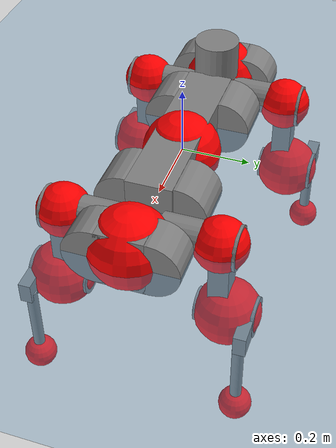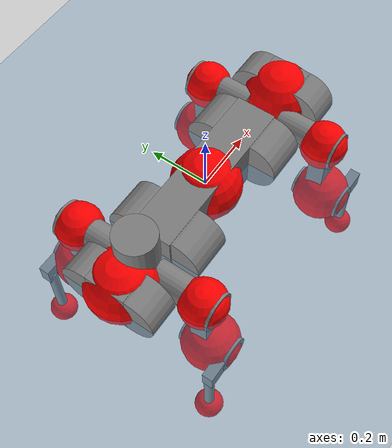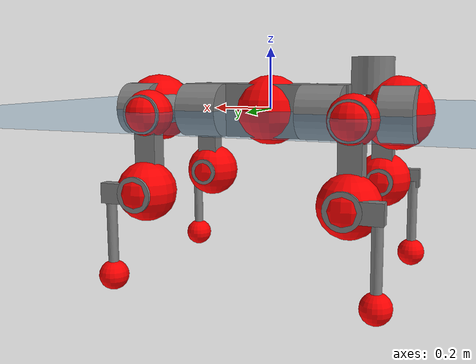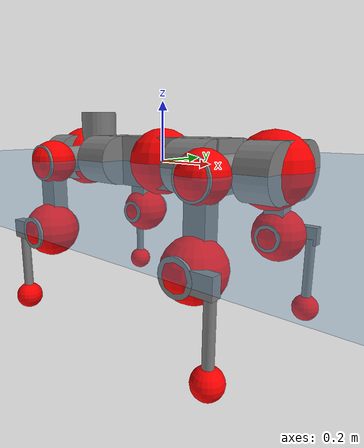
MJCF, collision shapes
<mujoco model="anymal_c">
  <compiler angle="radian" assetdir="assets" balanceinertia="true" inertiafromgeom="false"/>

  <option timestep="0.005" density="1.2" viscosity="2e-05"/>

  <size nkey="1"/>

  <visual>
    <quality shadowsize="8192"/>
    <map shadowclip="0.5"/>
  </visual>

  <default>
    <default class="/">
      <material specular="0" shininess="0.25"/>
      <geom contype="0" conaffinity="0" group="1" solref="-1000 -80"/>
      <site size="0.01 0.005 0.005" group="5"/>
      <general forcelimited="true" forcerange="-80 80" biastype="affine" gainprm="80" biasprm="0 -80 -2"/>
      <default class="anymal_c">
        <joint armature="0.01" damping="0.01" frictionloss="0.1"/>
        <default class="visual">
          <geom type="mesh" group="2"/>
          <default class="visual_zflip"/>
        </default>
        <default class="collision">
          <geom type="cylinder" group="3"/>
          <default class="foot">
            <geom size="0.03 0 0" type="sphere" condim="6" priority="1" friction="0.8 0.02 0.01" solimp="0.015 1 0.03"/>
          </default>
        </default>
      </default>
      <default class="reward_collision_sphere">
        <geom group="5" rgba="1 0 0 1"/>
      </default>
    </default>
  </default>

  <asset>
    <texture type="skybox" colorspace="auto" name="//unnamed_texture_0" builtin="gradient" rgb1="0.95 0.95 0.95" rgb2="0.95 0.95 0.95" width="100" height="600"/>
    <texture type="2d" colorspace="auto" name="texplane" builtin="checker" rgb1="0.345 0.575 0.748" rgb2="0.345 0.575 0.748" markrgb="1 1 1" width="512" height="512"/>
    <texture type="2d" colorspace="linear" name="base" file="base.png"/>
    <texture type="2d" colorspace="linear" name="top_shell" file="top_shell.png"/>
    <texture type="2d" colorspace="linear" name="bottom_shell" file="bottom_shell.png"/>
    <texture type="2d" colorspace="linear" name="remote" file="remote.png"/>
    <texture type="2d" colorspace="linear" name="hatch" file="hatch.png"/>
    <texture type="2d" colorspace="linear" name="handle" file="handle.png"/>
    <texture type="2d" colorspace="linear" name="face" file="face.png"/>
    <texture type="2d" colorspace="linear" name="battery" file="battery.png"/>
    <texture type="2d" colorspace="linear" name="lidar_cage" file="lidar_cage.png"/>
    <texture type="2d" colorspace="linear" name="depth_camera" file="depth_camera.png"/>
    <texture type="2d" colorspace="linear" name="wide_angle_camera" file="wide_angle_camera.png"/>
    <texture type="2d" colorspace="linear" name="lidar" file="lidar.png"/>
    <texture type="2d" colorspace="linear" name="drive" file="drive.png"/>
    <texture type="2d" colorspace="linear" name="hip_l" file="hip_l.png"/>
    <texture type="2d" colorspace="linear" name="shank_l" file="shank_l.png"/>
    <texture type="2d" colorspace="linear" name="foot" file="foot.png"/>
    <texture type="2d" colorspace="linear" name="thigh" file="thigh.png"/>
    <texture type="2d" colorspace="linear" name="shank_r" file="shank_r.png"/>
    <texture type="2d" colorspace="linear" name="hip_r" file="hip_r.png"/>
    <material name="MatPlane" class="/" texture="texplane" texuniform="true" texrepeat="2 2" specular="0.9" shininess="0.5"/>
    <material name="black_plastic" class="/" rgba="0.007 0.007 0.007 1"/>
    <material name="green" class="/" rgba="0.052 0.178 0.033 1"/>
    <material name="red" class="/" rgba="0.178 0.006 0.005 1"/>
    <material name="yellow" class="/" rgba="0.178 0.119 0.006 1"/>
    <material name="lwl" class="/" rgba="0.8 0.8 0.8 1"/>
    <material name="base" class="/" texture="base"/>
    <material name="top_shell" class="/" texture="top_shell"/>
    <material name="bottom_shell" class="/" texture="bottom_shell"/>
    <material name="hip_l" class="/" texture="hip_l"/>
    <material name="thigh" class="/" texture="thigh"/>
    <material name="shank_l" class="/" texture="shank_l"/>
    <material name="foot" class="/" texture="foot"/>
    <material name="hip_r" class="/" texture="hip_r"/>
    <material name="shank" class="/" texture="shank_r"/>
    <material name="hatch" class="/" texture="hatch"/>
    <material name="remote" class="/" texture="remote"/>
    <material name="handle" class="/" texture="handle"/>
    <material name="face" class="/" texture="face"/>
    <material name="depth_camera" class="/" texture="depth_camera"/>
    <material name="wide_angle_camera" class="/" texture="wide_angle_camera"/>
    <material name="battery" class="/" texture="battery"/>
    <material name="lidar_cage" class="/" texture="lidar_cage"/>
    <material name="lidar" class="/" texture="lidar"/>
    <material name="drive" class="/" texture="drive"/>
    <mesh name="base_0" class="/" file="base_0.obj"/>
    <mesh name="base_1" class="/" file="base_1.obj"/>
    <mesh name="base_2" class="/" file="base_2.obj"/>
    <mesh name="base_3" class="/" file="base_3.obj"/>
    <mesh name="base_4" class="/" file="base_4.obj"/>
    <mesh name="base_5" class="/" file="base_5.obj"/>
    <mesh name="top_shell" class="/" file="top_shell.obj"/>
    <mesh name="bottom_shell" class="/" file="bottom_shell.obj"/>
    <mesh name="remote" class="/" file="remote.obj"/>
    <mesh name="handle" class="/" file="handle.obj"/>
    <mesh name="face" class="/" file="face.obj"/>
    <mesh name="wide_angle_camera" class="/" file="wide_angle_camera.obj"/>
    <mesh name="depth_camera" class="/" file="depth_camera.obj"/>
    <mesh name="battery" class="/" file="battery.obj"/>
    <mesh name="lidar_cage" class="/" file="lidar_cage.obj"/>
    <mesh name="lidar" class="/" file="lidar.obj"/>
    <mesh name="drive" class="/" file="drive.obj"/>
    <mesh name="hip_l" class="/" file="hip_l.obj"/>
    <mesh name="thigh" class="/" file="thigh.obj"/>
    <mesh name="shank_l" class="/" file="shank_l.obj"/>
    <mesh name="foot" class="/" file="foot.obj"/>
    <mesh name="hip_r" class="/" file="hip_r.obj"/>
    <mesh name="hatch" class="/" file="hatch.obj"/>
    <mesh name="shank_r" class="/" file="shank_r.obj"/>
  </asset>

  <worldbody>
    <geom name="floor" class="/" size="100 100 0.125" type="plane" group="0" material="MatPlane"/>
    <light name="toplight_shadow" class="/" pos="0 0 5" dir="0.0990148 0.0990148 -0.990148" type="directional" ambient="0.04 0.04 0.04" diffuse="0.55 0.55 0.55" specular="0.12 0.12 0.12"/>
    <light name="toplight_fill" class="/" pos="0 0 5" dir="0.0990148 0.0990148 -0.990148" type="directional" castshadow="false" ambient="0.04 0.04 0.04" diffuse="0.3 0.3 0.3" specular="0.08 0.08 0.08"/>
    <body name="trunk" childclass="anymal_c" pos="0.000566486 -0.00204234 -0.00266791" quat="1 -0.000173434 0.000385332 0.000439979">
      <inertial pos="0.00347204 -8.98205e-06 0.0419053" quat="0.494475 0.493089 0.502789 0.509471" mass="17.6382" diaginertia="0.449817 0.943396 0.104975"/>
      <joint name="//unnamed_joint_0" type="free" armature="0" damping="0" frictionloss="0"/>
      <geom name="//unnamed_geom_1" class="visual" material="green" mesh="base_0"/>
      <geom name="//unnamed_geom_2" class="visual" material="yellow" mesh="base_1"/>
      <geom name="//unnamed_geom_3" class="visual" material="red" mesh="base_2"/>
      <geom name="//unnamed_geom_4" class="visual" material="black_plastic" mesh="base_3"/>
      <geom name="//unnamed_geom_5" class="visual" material="lwl" mesh="base_4"/>
      <geom name="//unnamed_geom_6" class="visual" material="base" mesh="base_5"/>
      <geom name="trunk_1" class="collision" size="0.278404 0.0672009 0.0864011" type="box"/>
      <geom name="trunk_2" class="collision" size="0.0864011 0.0696009" pos="0.203235 0.0759261 0" quat="0.707107 0 0.707107 0"/>
      <geom name="trunk_3" class="collision" size="0.0864011 0.0696009" pos="-0.203235 0.0759261 0" quat="0.707107 0 0.707107 0"/>
      <geom name="trunk_4" class="collision" size="0.0864011 0.0696009" pos="0.203235 -0.0759261 0" quat="0.707107 0 0.707107 0"/>
      <geom name="trunk_5" class="collision" size="0.0864011 0.0696009" pos="-0.203235 -0.0759261 0" quat="0.707107 0 0.707107 0"/>
      <geom name="//unnamed_geom_12" class="visual" material="top_shell" mesh="top_shell"/>
      <geom name="//unnamed_geom_13" class="visual" material="bottom_shell" mesh="bottom_shell"/>
      <geom name="//unnamed_geom_14" class="visual" material="remote" mesh="remote"/>
      <geom name="//unnamed_geom_15" class="visual" material="handle" mesh="handle"/>
      <geom name="//unnamed_geom_16" class="visual" pos="0.387314 0 0" quat="1 0 0 0" material="face" mesh="face"/>
      <geom name="trunk_6" class="collision" size="0.0528007 0.0672009 0.0864011" pos="0.438707 0 0" type="box"/>
      <geom name="//unnamed_geom_18" class="collision" size="0.0864011 0.0528007" pos="0.438707 0.0759261 0" quat="0.707107 0 0.707107 0"/>
      <geom name="//unnamed_geom_19" class="collision" size="0.0864011 0.0528007" pos="0.438707 -0.0759261 0" quat="0.707107 0 0.707107 0"/>
      <geom name="//unnamed_geom_20" class="visual" pos="0.431369 0 -0.024582" quat="0.965926 0 0.258819 0" material="depth_camera" mesh="depth_camera"/>
      <geom name="//unnamed_geom_21" class="visual" pos="0.479354 0 0.0128887" material="wide_angle_camera" mesh="wide_angle_camera"/>
      <geom name="//unnamed_geom_22" class="visual_zflip" pos="-0.387314 0 0" quat="0 0 0 1" material="face" mesh="face"/>
      <geom name="trunk_7" class="collision" size="0.0528007 0.0672009 0.0864011" pos="-0.438707 0 0" quat="0 0 0 1" type="box"/>
      <geom name="//unnamed_geom_24" class="collision" size="0.0864011 0.0528007" pos="-0.438707 -0.0759261 0" quat="0 -0.707107 0 0.707107"/>
      <geom name="//unnamed_geom_25" class="collision" size="0.0864011 0.0528007" pos="-0.438707 0.0759261 0" quat="0 -0.707107 0 0.707107"/>
      <geom name="//unnamed_geom_26" class="visual" pos="-0.431369 0 -0.024582" quat="0 -0.258819 0 0.965926" material="depth_camera" mesh="depth_camera"/>
      <geom name="//unnamed_geom_27" class="visual_zflip" pos="-0.479354 0 0.0128887" quat="0 0 0 1" material="wide_angle_camera" mesh="wide_angle_camera"/>
      <geom name="//unnamed_geom_28" class="visual" material="battery" mesh="battery"/>
      <geom name="//unnamed_geom_29" class="visual" pos="0 0.0849015 0.0255692" quat="0.683013 -0.183013 0.183013 0.683013" material="depth_camera" mesh="depth_camera"/>
      <geom name="//unnamed_geom_30" class="visual" pos="0 -0.0849015 0.0255692" quat="0.683013 0.183013 0.183013 -0.683013" material="depth_camera" mesh="depth_camera"/>
      <geom name="//unnamed_geom_31" class="visual" pos="-0.340126 0 0.063281" quat="1 0 0 0" material="lidar_cage" mesh="lidar_cage"/>
      <geom name="trunk_8" class="collision" size="0.0672009 0.0576007" pos="-0.340126 0 0.114939"/>
      <geom name="//unnamed_geom_33" class="visual" pos="-0.340126 5.90276e-05 0.122429" quat="0.707107 0 0 -0.707107" material="lidar" mesh="lidar"/>
      <geom name="//unnamed_geom_34" class="visual" pos="0.28023 0.112725 3.85873e-09" quat="0.258819 0.965926 0 0" material="drive" mesh="drive"/>
      <geom name="//unnamed_geom_35" class="visual" pos="0.28023 -0.112725 -3.85873e-09" quat="0.258819 -0.965926 0 0" material="drive" mesh="drive"/>
      <geom name="//unnamed_geom_36" class="visual" pos="-0.28023 0.112725 -3.85873e-09" quat="0 0 0.965926 -0.258819" material="drive" mesh="drive"/>
      <geom name="//unnamed_geom_37" class="visual" pos="-0.28023 -0.112725 3.85873e-09" quat="0 0 -0.965926 -0.258819" material="drive" mesh="drive"/>
      <geom name="//unnamed_geom_38" class="visual" pos="0.108392 0 0.0628505" quat="1 0 0 0" material="hatch" mesh="hatch"/>
      <geom name="//unnamed_geom_39" class="reward_collision_sphere" size="0.115201"/>
      <geom name="//unnamed_geom_40" class="reward_collision_sphere" size="0.115201" pos="0.420486 0 0"/>
      <geom name="//unnamed_geom_41" class="reward_collision_sphere" size="0.115201" pos="-0.420486 0 0"/>
      <site name="imu" pos="0.227691 0.0219375 0.0296801" size="0.00960012"/>
      <camera name="track" pos="0 -2.16932 0" quat="0.707107 0.707107 0 0" mode="trackcom"/>
      <camera name="ego_camera" pos="0.420486 0 -0.0344386" quat="-0.5 -0.5 0.5 0.5"/>
      <body name="LF_HIP" pos="0.278179 0.110726 0.00291683" quat="0.258753 0.965944 -5.51889e-05 0.000385567">
        <inertial pos="0.0542172 -0.019013 -0.00965866" quat="-0.127884 0.709236 -0.139539 0.679087" mass="2.47003" diaginertia="0.00416627 0.00744956 0.00162096"/>
        <joint name="LF_HAA" pos="0 0 0" axis="0.999957 0.00890227 -0.00258693" range="-0.703739 0.476363" armature="0.0103789" damping="0" frictionloss="0.109069"/>
        <geom name="//unnamed_geom_42" class="visual" pos="0 0.000226992 -3.72832e-05" quat="0.258819 -0.965926 0 0" material="hip_l" mesh="hip_l"/>
        <geom name="//unnamed_geom_43" class="visual" pos="0.0559713 -0.0697199 -0.0385982" quat="0.183013 -0.683013 0.683013 0.183013" material="drive" mesh="drive"/>
        <geom name="//unnamed_geom_44" class="collision" size="0.0480006 0.0672009" pos="0.0559713 -0.0129723 -0.00594497" quat="-0.353553 -0.612372 0.612372 -0.353553"/>
        <body name="LF_THIGH" pos="0.0546586 -0.0781995 -0.034295" quat="0.183547 -0.683103 0.682832 0.182817">
          <inertial pos="0.0283024 -0.000534295 -0.211165" quat="0.993105 -0.00269191 -0.0794099 0.0861959" mass="2.6506" diaginertia="0.0216231 0.0459371 0.00191181"/>
          <joint name="LF_HFE" pos="0 0 0" axis="0.999915 -0.00829255 -0.0100484" range="-3.16501 3.17104" armature="0.0103796" damping="0.0101782" frictionloss="0.109266"/>
          <geom name="//unnamed_geom_45" class="visual" pos="-0.0029893 -4.71044e-06 0" quat="0.707107 0 0 -0.707107" material="thigh" mesh="thigh"/>
          <geom name="//unnamed_geom_46" class="collision" size="0.0624008 0.0384005" pos="0.0373765 0 0" quat="0.5 0.5 -0.5 -0.5"/>
          <geom name="//unnamed_geom_47" class="collision" size="0.0360005 0.0288004 0.135663" pos="0.0280324 0 -0.121666" quat="0.707107 0 0 -0.707107" type="box"/>
          <geom name="//unnamed_geom_48" class="visual" pos="0.0937216 0 -0.245375" quat="1 0 0 0" material="drive" mesh="drive"/>
          <geom name="//unnamed_geom_49" class="collision" size="0.0480006 0.0672009" pos="0.0283127 0 -0.245375" quat="0.707107 0 0.707107 0"/>
          <geom name="//unnamed_geom_50" class="reward_collision_sphere" size="0.076801" pos="0.0233603 0 0"/>
          <body name="LF_SHANK" pos="0.0955198 0.000200227 -0.245823" quat="0.999999 0.000132763 -0.000614382 0.000926884">
            <inertial pos="0.0076329 -0.063715 -0.0711899" quat="0.993067 -0.114378 -0.00229999 -0.0270074" mass="0.533884" diaginertia="0.00701716 0.0143329 0.000514179"/>
            <joint name="LF_KFE" pos="0 0 0" axis="0.999941 0.00532783 0.00941965" stiffness="0.00054935" range="-3.13022 3.12115" armature="0.0081946" damping="0.0102616" frictionloss="0.0941999"/>
            <geom name="//unnamed_geom_51" class="visual" pos="-0.000974747 -0.0051974 0" quat="0.707107 0 0 -0.707107" material="shank_l" mesh="shank_l"/>
            <geom name="LF_kfe_act" class="collision" size="0.0576007 0.0192002" pos="0.0186883 0 0" quat="0.5 0.5 -0.5 -0.5"/>
            <geom name="//unnamed_geom_53" class="collision" size="0.0551997 0.0324004 0.0182402" pos="0.0186883 -0.0623668 0" quat="0.5 0.5 -0.5 -0.5" type="box"/>
            <geom name="//unnamed_geom_54" class="visual" pos="0.0121943 -0.0970706 -0.290981" quat="0.382683 0 0 -0.92388" material="foot" mesh="foot"/>
            <geom name="LF_calf" class="collision" size="0.0168002 0.135604" pos="0.0121941 -0.0953957 -0.14549" quat="0.707107 0 0 -0.707107"/>
            <geom name="LF_foot" class="foot" size="0.0344717" pos="0.0121941 -0.0953957 -0.271609" quat="0.707107 0 0 -0.707107"/>
            <geom name="//unnamed_geom_57" class="reward_collision_sphere" size="0.0960012" pos="-0.0467206 0 0"/>
            <geom name="//unnamed_geom_58" class="reward_collision_sphere" size="0.0480006" pos="0.0121941 -0.0953957 -0.271609"/>
            <site name="LF_foot" class="foot" pos="0.0121941 -0.0953957 -0.271609" quat="0.707107 0 0 -0.707107" size="0.00960012"/>
          </body>
        </body>
      </body>
      <body name="RF_HIP" pos="0.281064 -0.112689 0.000858308" quat="0.258959 -0.965887 -0.000278468 0.0013736">
        <inertial pos="0.0543914 0.0193343 -0.00703592" quat="0.134389 0.682164 0.129311 0.707015" mass="2.45551" diaginertia="0.00424933 0.00743987 0.00154924"/>
        <joint name="RF_HAA" pos="0 0 0" axis="0.999996 -0.0024383 0.0015265" range="-0.440089 0.704075" armature="0.0100559" damping="0.00995791" frictionloss="0.0925638"/>
        <geom name="//unnamed_geom_59" class="visual" pos="0 -0.00022699 -3.72831e-05" quat="0.258819 0.965926 0 0" material="hip_r" mesh="hip_r"/>
        <geom name="//unnamed_geom_60" class="visual" pos="0.0559713 0.0697199 -0.0385982" quat="0.183013 0.683013 0.683013 -0.183013" material="drive" mesh="drive"/>
        <geom name="//unnamed_geom_61" class="collision" size="0.0480006 0.0672009" pos="0.0559713 0.0129723 -0.00594497" quat="-0.353553 0.612372 0.612372 0.353553"/>
        <body name="RF_THIGH" pos="0.0565096 0.0776208 -0.0359163" quat="0.183033 0.683021 0.683019 -0.182937">
          <inertial pos="0.0269379 0.00104736 -0.213442" quat="0.992562 -0.00516178 -0.0814335 0.0903491" mass="2.6746" diaginertia="0.0207699 0.0419369 0.00188498"/>
          <joint name="RF_HFE" pos="0 0 0" axis="0.999938 -0.00533682 0.00982026" stiffness="0.002595" range="-3.18906 3.08892" armature="0.00951342" damping="0.0101551" frictionloss="0.109151"/>
          <geom name="//unnamed_geom_62" class="visual" pos="-0.0029893 -4.71044e-06 0" quat="0.707107 0 0 -0.707107" material="thigh" mesh="thigh"/>
          <geom name="//unnamed_geom_63" class="collision" size="0.0624008 0.0384005" pos="0.0373765 0 0" quat="0.5 0.5 0.5 0.5"/>
          <geom name="//unnamed_geom_64" class="collision" size="0.0360005 0.0288004 0.135663" pos="0.0280324 0 -0.121666" quat="0.707107 0 0 0.707107" type="box"/>
          <geom name="//unnamed_geom_65" class="visual" pos="0.0937216 0 -0.245375" quat="1 0 0 0" material="drive" mesh="drive"/>
          <geom name="//unnamed_geom_66" class="collision" size="0.0480006 0.0672009" pos="0.0283127 0 -0.245375" quat="0.707107 0 0.707107 0"/>
          <geom name="//unnamed_geom_67" class="reward_collision_sphere" size="0.076801" pos="0.0233603 0 0"/>
          <body name="RF_SHANK" pos="0.0963869 0.000241969 -0.246229" quat="1 8.34774e-06 -0.000112812 -0.000110799">
            <inertial pos="0.00802574 0.0660257 -0.0712779" quat="0.992794 0.117348 -0.000287898 0.0242863" mass="0.540796" diaginertia="0.00741393 0.0137258 0.000530485"/>
            <joint name="RF_KFE" pos="0 0 0" axis="0.999992 -0.000803505 -0.00388969" range="-3.1579 3.13687" armature="0.00923081" damping="0.0221202" frictionloss="0.104853"/>
            <geom name="//unnamed_geom_68" class="visual" pos="-0.000974742 0.00519739 0" quat="0.707107 0 0 0.707107" material="shank" mesh="shank_r"/>
            <geom name="RF_kfe_act" class="collision" size="0.0576007 0.0192002" pos="0.0186883 0 0" quat="0.5 0.5 0.5 0.5"/>
            <geom name="//unnamed_geom_70" class="collision" size="0.0551997 0.0324004 0.0182402" pos="0.0186883 0.0623668 0" quat="0.5 0.5 0.5 0.5" type="box"/>
            <geom name="//unnamed_geom_71" class="visual" pos="0.0121938 0.0970706 -0.290981" quat="0.382683 0 0 0.92388" material="foot" mesh="foot"/>
            <geom name="RF_calf" class="collision" size="0.0168002 0.135604" pos="0.0121941 0.0953957 -0.14549" quat="0.707107 0 0 0.707107"/>
            <geom name="RF_foot" class="foot" size="0.0280924" pos="0.0121941 0.0953957 -0.271609" quat="0.707107 0 0 0.707107"/>
            <geom name="//unnamed_geom_74" class="reward_collision_sphere" size="0.0960012" pos="-0.0467206 0 0"/>
            <geom name="//unnamed_geom_75" class="reward_collision_sphere" size="0.0480006" pos="0.0121941 0.0953957 -0.271609"/>
            <site name="RF_foot" class="foot" pos="0.0121941 0.0953957 -0.271609" quat="0.707107 0 0 0.707107" size="0.00960012"/>
          </body>
        </body>
      </body>
      <body name="LH_HIP" pos="-0.279956 0.114851 0.00258054" quat="-0.000501573 -5.91823e-05 0.966145 -0.257998">
        <inertial pos="0.0524266 0.014784 -0.00753774" quat="0.13532 0.678926 0.128177 0.710153" mass="2.47952" diaginertia="0.00412506 0.00746953 0.00150244"/>
        <joint name="LH_HAA" pos="0 0 0" axis="0.999993 0.000249484 0.00381004" stiffness="0.00820018" range="-0.517667 0.731276" armature="0.00974423" damping="0.00965062" frictionloss="0.10876"/>
        <geom name="//unnamed_geom_76" class="visual" pos="0 -0.00022699 -3.72831e-05" quat="-0.258819 -0.965926 0 0" material="hip_r" mesh="hip_r"/>
        <geom name="//unnamed_geom_77" class="visual" pos="0.0559713 0.0697199 -0.0385982" quat="0.183013 0.683013 0.683013 -0.183013" material="drive" mesh="drive"/>
        <geom name="//unnamed_geom_78" class="collision" size="0.0480006 0.0672009" pos="0.0559713 0.0129723 -0.00594497" quat="-0.353553 0.612372 0.612372 0.353553"/>
        <body name="LH_THIGH" pos="0.0558434 0.081705 -0.0344447" quat="0.183165 0.683019 0.682974 -0.182981">
          <inertial pos="0.0296133 -0.00107485 -0.212202" quat="0.992869 -0.00785596 -0.0799525 0.0880723" mass="2.67801" diaginertia="0.0220708 0.0439615 0.00203514"/>
          <joint name="LH_HFE" pos="0 0 0" axis="0.999945 -0.00767297 0.00718285" range="-3.15444 3.15373" armature="0.00863845" damping="0.00970768" frictionloss="0.0839132"/>
          <geom name="//unnamed_geom_79" class="visual" pos="-0.0029893 -4.71044e-06 0" quat="0.707107 0 0 -0.707107" material="thigh" mesh="thigh"/>
          <geom name="//unnamed_geom_80" class="collision" size="0.0624008 0.0384005" pos="0.0373765 0 0" quat="0.5 0.5 -0.5 -0.5"/>
          <geom name="//unnamed_geom_81" class="collision" size="0.0360005 0.0288004 0.135663" pos="0.0280324 0 -0.121666" quat="0.707107 0 0 -0.707107" type="box"/>
          <geom name="//unnamed_geom_82" class="visual" pos="0.0937216 0 -0.245375" quat="1 0 0 0" material="drive" mesh="drive"/>
          <geom name="//unnamed_geom_83" class="collision" size="0.0480006 0.0672009" pos="0.0283127 0 -0.245375" quat="0.707107 0 0.707107 0"/>
          <geom name="//unnamed_geom_84" class="reward_collision_sphere" size="0.076801" pos="0.0233603 0 0"/>
          <body name="LH_SHANK" pos="0.0964474 -0.000392469 -0.243338" quat="1 0.000202563 -4.98559e-05 1.23312e-05">
            <inertial pos="0.00495151 0.0660015 -0.066784" quat="0.992714 0.11784 -0.00238793 0.0250537" mass="0.524368" diaginertia="0.00720865 0.0136613 0.000533457"/>
            <joint name="LH_KFE" pos="0 0 0" axis="0.999973 -0.00364462 -0.00641877" range="-3.18555 3.13824" armature="0.0084139" damping="0.00883091" frictionloss="0.100557"/>
            <geom name="//unnamed_geom_85" class="visual" pos="-0.000974742 0.00519739 0" quat="-0.707107 0 0 -0.707107" material="shank" mesh="shank_r"/>
            <geom name="LH_kfe_act" class="collision" size="0.0576007 0.0192002" pos="0.0186883 0 0" quat="0.5 0.5 -0.5 -0.5"/>
            <geom name="//unnamed_geom_87" class="collision" size="0.0551997 0.0324004 0.0182402" pos="0.0186883 0.0623668 0" quat="0.5 0.5 -0.5 -0.5" type="box"/>
            <geom name="//unnamed_geom_88" class="visual" pos="0.0121938 0.0970706 -0.290981" quat="-0.382683 0 0 -0.92388" material="foot" mesh="foot"/>
            <geom name="LH_calf" class="collision" size="0.0168002 0.135604" pos="0.0121941 0.0953957 -0.14549" quat="0.707107 0 0 -0.707107"/>
            <geom name="LH_foot" class="foot" size="0.0316496" pos="0.0121941 0.0953957 -0.271609" quat="0.707107 0 0 -0.707107"/>
            <geom name="//unnamed_geom_91" class="reward_collision_sphere" size="0.0960012" pos="-0.0467206 0 0"/>
            <geom name="//unnamed_geom_92" class="reward_collision_sphere" size="0.0480006" pos="0.0121941 0.0953957 -0.271609"/>
            <site name="LH_foot" class="foot" pos="0.0121941 0.0953957 -0.271609" quat="0.707107 0 0 -0.707107" size="0.00960012"/>
          </body>
        </body>
      </body>
      <body name="RH_HIP" pos="-0.278295 -0.111935 0.00116648" quat="-4.89487e-05 -0.000113235 -0.966245 -0.257624">
        <inertial pos="0.0531355 -0.0152722 -0.00734021" quat="-0.127449 0.709747 -0.134625 0.679626" mass="2.47804" diaginertia="0.00435303 0.00768605 0.00152033"/>
        <joint name="RH_HAA" pos="0 0 0" axis="0.999998 0.0019299 -0.000124087" range="-0.709832 0.480848" armature="0.00939188" damping="0.00131713" frictionloss="0.0929004"/>
        <geom name="//unnamed_geom_93" class="visual" pos="0 0.000226992 -3.72832e-05" quat="-0.258819 0.965926 0 0" material="hip_l" mesh="hip_l"/>
        <geom name="//unnamed_geom_94" class="visual" pos="0.0559713 -0.0697199 -0.0385982" quat="-0.183013 0.683013 -0.683013 -0.183013" material="drive" mesh="drive"/>
        <geom name="//unnamed_geom_95" class="collision" size="0.0480006 0.0672009" pos="0.0559713 -0.0129723 -0.00594497" quat="0.353553 0.612372 -0.612372 0.353553"/>
        <body name="RH_THIGH" pos="0.0547492 -0.0790426 -0.0367067" quat="-0.182347 0.682102 -0.684138 -0.18287">
          <inertial pos="0.0288763 -0.00283989 -0.212141" quat="0.993174 -0.00518531 -0.0804064 0.0843449" mass="2.53697" diaginertia="0.0201329 0.0434762 0.00191033"/>
          <joint name="RH_HFE" pos="0 0 0" axis="0.999963 0.000925048 0.00857313" range="-3.14333 3.19185" armature="0.0108165" damping="0.000979235" frictionloss="0.086647"/>
          <geom name="//unnamed_geom_96" class="visual" pos="-0.0029893 -4.71044e-06 0" quat="0.707107 0 0 -0.707107" material="thigh" mesh="thigh"/>
          <geom name="//unnamed_geom_97" class="collision" size="0.0624008 0.0384005" pos="0.0373765 0 0" quat="0.5 0.5 0.5 0.5"/>
          <geom name="//unnamed_geom_98" class="collision" size="0.0360005 0.0288004 0.135663" pos="0.0280324 0 -0.121666" quat="0.707107 0 0 0.707107" type="box"/>
          <geom name="//unnamed_geom_99" class="visual" pos="0.0937216 0 -0.245375" quat="1 0 0 0" material="drive" mesh="drive"/>
          <geom name="//unnamed_geom_100" class="collision" size="0.0480006 0.0672009" pos="0.0283127 0 -0.245375" quat="0.707107 0 0.707107 0"/>
          <geom name="//unnamed_geom_101" class="reward_collision_sphere" size="0.076801" pos="0.0233603 0 0"/>
          <body name="RH_SHANK" pos="0.0953881 0.00210625 -0.246265" quat="1 -0.000170344 -0.000424288 -2.41175e-05">
            <inertial pos="0.00355261 -0.0665591 -0.06687" quat="0.992866 -0.112936 0.00142323 -0.0382044" mass="0.517839" diaginertia="0.00756034 0.0136863 0.000549983"/>
            <joint name="RH_KFE" pos="0 0 0" axis="0.999841 -0.00269924 0.0176228" range="-3.09767 3.10287" armature="0.00880505" damping="0.0106331" frictionloss="0.105918"/>
            <geom name="//unnamed_geom_102" class="visual" pos="-0.000974747 -0.0051974 0" quat="0.707107 0 0 -0.707107" material="shank_l" mesh="shank_l"/>
            <geom name="RH_kfe_act" class="collision" size="0.0576007 0.0192002" pos="0.0186883 0 0" quat="0.5 0.5 0.5 0.5"/>
            <geom name="//unnamed_geom_104" class="collision" size="0.0551997 0.0324004 0.0182402" pos="0.0186883 -0.0623668 0" quat="0.5 0.5 0.5 0.5" type="box"/>
            <geom name="//unnamed_geom_105" class="visual" pos="0.0121943 -0.0970706 -0.290981" quat="0.382683 0 0 -0.92388" material="foot" mesh="foot"/>
            <geom name="RH_calf" class="collision" size="0.0168002 0.135604" pos="0.0121941 -0.0953957 -0.14549" quat="0.707107 0 0 0.707107"/>
            <geom name="RH_foot" class="foot" size="0.0237866" pos="0.0121941 -0.0953957 -0.271609" quat="0.707107 0 0 0.707107"/>
            <geom name="//unnamed_geom_108" class="reward_collision_sphere" size="0.0960012" pos="-0.0467206 0 0"/>
            <geom name="//unnamed_geom_109" class="reward_collision_sphere" size="0.0480006" pos="0.0121941 -0.0953957 -0.271609"/>
            <site name="RH_foot" class="foot" pos="0.0121941 -0.0953957 -0.271609" quat="0.707107 0 0 0.707107" size="0.00960012"/>
          </body>
        </body>
      </body>
    </body>
  </worldbody>

  <contact>
    <pair class="/" geom1="floor" geom2="LF_foot" name="//unnamed_contact_0"/>
    <pair class="/" geom1="floor" geom2="RF_foot" name="//unnamed_contact_1"/>
    <pair class="/" geom1="floor" geom2="LH_foot" name="//unnamed_contact_2"/>
    <pair class="/" geom1="floor" geom2="RH_foot" name="//unnamed_contact_3"/>
  </contact>

  <actuator>
    <general name="LF_HAA" class="/" joint="LF_HAA" forcerange="-79.3306 79.3306" gainprm="77.1686" biasprm="0 -77.1686 -2.06781"/>
    <general name="LF_HFE" class="/" joint="LF_HFE" forcerange="-69.0806 69.0806" gainprm="77.1686" biasprm="0 -77.1686 -2.06781"/>
    <general name="LF_KFE" class="/" joint="LF_KFE" forcerange="-78.7506 78.7506" gainprm="77.1686" biasprm="0 -77.1686 -2.06781"/>
    <general name="RF_HAA" class="/" joint="RF_HAA" forcerange="-72.9752 72.9752" gainprm="77.1686" biasprm="0 -77.1686 -2.06781"/>
    <general name="RF_HFE" class="/" joint="RF_HFE" forcerange="-77.3573 77.3573" gainprm="77.1686" biasprm="0 -77.1686 -2.06781"/>
    <general name="RF_KFE" class="/" joint="RF_KFE" forcerange="-71.8405 71.8405" gainprm="77.1686" biasprm="0 -77.1686 -2.06781"/>
    <general name="LH_HAA" class="/" joint="LH_HAA" forcerange="-78.4399 78.4399" gainprm="77.1686" biasprm="0 -77.1686 -2.06781"/>
    <general name="LH_HFE" class="/" joint="LH_HFE" forcerange="-78.085 78.085" gainprm="77.1686" biasprm="0 -77.1686 -2.06781"/>
    <general name="LH_KFE" class="/" joint="LH_KFE" forcerange="-75.6355 75.6355" gainprm="77.1686" biasprm="0 -77.1686 -2.06781"/>
    <general name="RH_HAA" class="/" joint="RH_HAA" forcerange="-78.6897 78.6897" gainprm="77.1686" biasprm="0 -77.1686 -2.06781"/>
    <general name="RH_HFE" class="/" joint="RH_HFE" forcerange="-70.9938 70.9938" gainprm="77.1686" biasprm="0 -77.1686 -2.06781"/>
    <general name="RH_KFE" class="/" joint="RH_KFE" forcerange="-77.2642 77.2642" gainprm="77.1686" biasprm="0 -77.1686 -2.06781"/>
  </actuator>

  <sensor>
    <gyro site="imu" name="imu_angular_velocity"/>
    <velocimeter site="imu" name="imu_linear_velocity"/>
    <framelinvel objtype="site" objname="LF_foot" name="LF_foot_global_linear_velocity"/>
    <framelinvel objtype="site" objname="RF_foot" name="RF_foot_global_linear_velocity"/>
    <framelinvel objtype="site" objname="LH_foot" name="LH_foot_global_linear_velocity"/>
    <framelinvel objtype="site" objname="RH_foot" name="RH_foot_global_linear_velocity"/>
  </sensor>

  <keyframe>
    <key name="home" qpos="0 0 0.55 1 0 0 0 0 0.4 -0.8 0 -0.4 0.8 0 -0.4 0.8 0 0.4 -0.8"/>
  </keyframe>
</mujoco>
